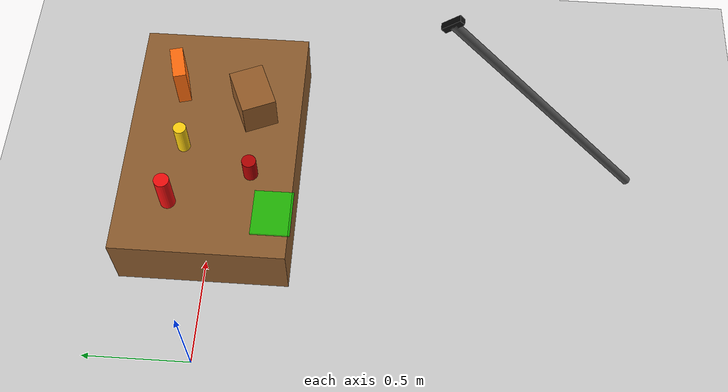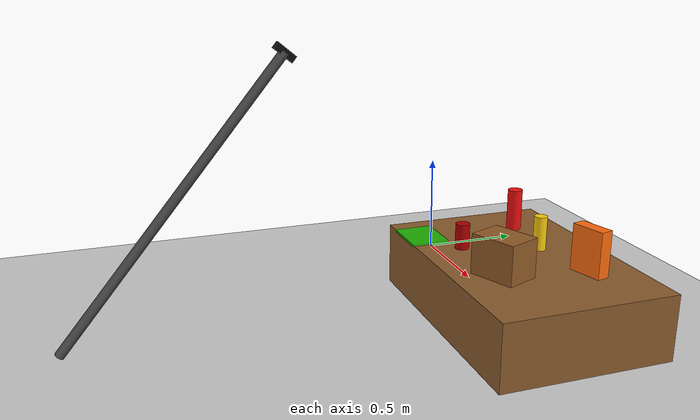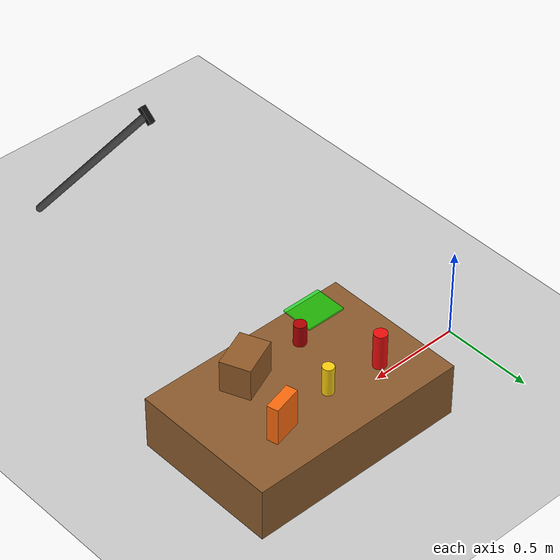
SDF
<?xml version="1.0" ?>

<sdf version="1.7">
  <world name="pbvs_pick_place">

    <plugin filename="gz-sim-physics-system" name="gz::sim::systems::Physics"/>
    <plugin filename="gz-sim-user-commands-system" name="gz::sim::systems::UserCommands"/>
    <plugin filename="gz-sim-scene-broadcaster-system" name="gz::sim::systems::SceneBroadcaster"/>
    <plugin filename="gz-sim-sensors-system" name="gz::sim::systems::Sensors">
      <render_engine>ogre2</render_engine>
    </plugin>

    <gravity>0 0 -9.8</gravity>

    <include>
      <uri>https://fuel.gazebosim.org/1.0/OpenRobotics/models/Sun</uri>
    </include>

    <include>
      <uri>https://fuel.gazebosim.org/1.0/OpenRobotics/models/Ground Plane</uri>
    </include>

    <model name="pbvs_table">
      <static>true</static>
      <pose>1.00 0.00 0.15 0 0 0</pose>

      <link name="table_link">
        <collision name="table_collision">
          <geometry>
            <box>
              <size>1.20 0.80 0.30</size>
            </box>
          </geometry>
        </collision>

        <visual name="table_visual">
          <geometry>
            <box>
              <size>1.20 0.80 0.30</size>
            </box>
          </geometry>
          <material>
            <ambient>0.55 0.36 0.18 1</ambient>
            <diffuse>0.55 0.36 0.18 1</diffuse>
          </material>
        </visual>
      </link>
    </model>

    <!--
      Objects are separated on the table.

      New table top z = 0.30 m.
      object centre z = 0.30 + object_height/2
    -->

    <model name="red_cylinder">
      <static>true</static>
      <!-- height = 0.20, centre z = 0.30 + 0.20/2 = 0.40 -->
      <pose>0.65 0.16 0.40 0 0 0</pose>

      <link name="red_cylinder_link">
        <collision name="collision">
          <geometry>
            <cylinder>
              <radius>0.035</radius>
              <length>0.20</length>
            </cylinder>
          </geometry>
        </collision>

        <visual name="visual">
          <geometry>
            <cylinder>
              <radius>0.035</radius>
              <length>0.20</length>
            </cylinder>
          </geometry>
          <material>
            <ambient>0.95 0.05 0.05 1</ambient>
            <diffuse>0.95 0.05 0.05 1</diffuse>
          </material>
        </visual>
      </link>
    </model>

    <model name="mustard">
      <static>true</static>
      <!-- height = 0.16, centre z = 0.30 + 0.16/2 = 0.38 -->
      <pose>0.95 0.13 0.38 0 0 0</pose>

      <link name="mustard_link">
        <collision name="collision">
          <geometry>
            <cylinder>
              <radius>0.030</radius>
              <length>0.16</length>
            </cylinder>
          </geometry>
        </collision>

        <visual name="visual">
          <geometry>
            <cylinder>
              <radius>0.030</radius>
              <length>0.16</length>
            </cylinder>
          </geometry>
          <material>
            <ambient>1.00 0.82 0.05 1</ambient>
            <diffuse>1.00 0.82 0.05 1</diffuse>
          </material>
        </visual>
      </link>
    </model>

    <model name="cheezit">
      <static>true</static>
      <!-- height = 0.21, centre z = 0.30 + 0.21/2 = 0.405 -->
      <pose>1.28 0.18 0.405 0 0 0.25</pose>

      <link name="cheezit_link">
        <collision name="collision">
          <geometry>
            <box>
              <size>0.16 0.06 0.21</size>
            </box>
          </geometry>
        </collision>

        <visual name="visual">
          <geometry>
            <box>
              <size>0.16 0.06 0.21</size>
            </box>
          </geometry>
          <material>
            <ambient>1.00 0.42 0.05 1</ambient>
            <diffuse>1.00 0.42 0.05 1</diffuse>
          </material>
        </visual>
      </link>
    </model>

    <model name="cardboard_box">
      <static>true</static>
      <!-- height = 0.18, centre z = 0.30 + 0.18/2 = 0.39 -->
      <pose>1.18 -0.18 0.39 0 0 0.40</pose>

      <link name="cardboard_box_link">
        <collision name="collision">
          <geometry>
            <box>
              <size>0.22 0.16 0.18</size>
            </box>
          </geometry>
        </collision>

        <visual name="visual">
          <geometry>
            <box>
              <size>0.22 0.16 0.18</size>
            </box>
          </geometry>
          <material>
            <ambient>0.58 0.36 0.16 1</ambient>
            <diffuse>0.58 0.36 0.16 1</diffuse>
          </material>
        </visual>
      </link>
    </model>

    <model name="coke_can">
      <static>true</static>
      <!-- height = 0.12, centre z = 0.30 + 0.12/2 = 0.36 -->
      <pose>0.82 -0.20 0.36 0 0 0</pose>

      <link name="coke_can_link">
        <collision name="collision">
          <geometry>
            <cylinder>
              <radius>0.033</radius>
              <length>0.12</length>
            </cylinder>
          </geometry>
        </collision>

        <visual name="visual">
          <geometry>
            <cylinder>
              <radius>0.033</radius>
              <length>0.12</length>
            </cylinder>
          </geometry>
          <material>
            <ambient>0.70 0.00 0.00 1</ambient>
            <diffuse>0.70 0.00 0.00 1</diffuse>
          </material>
        </visual>
      </link>
    </model>

    <model name="drop_zone">
      <static>true</static>
      <!-- thickness = 0.012, centre z = 0.30 + 0.012/2 = 0.306 -->
      <pose>0.62 -0.32 0.306 0 0 0</pose>

      <link name="drop_link">
        <visual name="drop_visual">
          <geometry>
            <box>
              <size>0.22 0.18 0.012</size>
            </box>
          </geometry>
          <material>
            <ambient>0.0 0.9 0.0 0.7</ambient>
            <diffuse>0.0 0.9 0.0 0.7</diffuse>
          </material>
        </visual>
      </link>
    </model>

    <model name="realsense_stand">
      <static>true</static>
      <pose>1.00 -1.05 1.25 0 0.692 1.571</pose>

      <link name="camera_stand_link">
        <visual name="pole_visual">
          <pose>0 0 -0.72 0 0 0</pose>
          <geometry>
            <cylinder>
              <radius>0.02</radius>
              <length>1.44</length>
            </cylinder>
          </geometry>
          <material>
            <ambient>0.30 0.30 0.30 1</ambient>
            <diffuse>0.30 0.30 0.30 1</diffuse>
          </material>
        </visual>

        <visual name="camera_body_visual">
          <geometry>
            <box>
              <size>0.09 0.03 0.03</size>
            </box>
          </geometry>
          <material>
            <ambient>0.05 0.05 0.05 1</ambient>
            <diffuse>0.05 0.05 0.05 1</diffuse>
          </material>
        </visual>

        <sensor name="realsense_color" type="camera">
          <pose>0 0 0 0 0 0</pose>
          <update_rate>30</update_rate>

          <camera>
            <horizontal_fov>1.20</horizontal_fov>
            <image>
              <width>640</width>
              <height>480</height>
              <format>R8G8B8</format>
            </image>
            <clip>
              <near>0.10</near>
              <far>10.0</far>
            </clip>
          </camera>

          <topic>/camera/camera/color/image_raw</topic>
          <camera_info_topic>/camera/camera/color/camera_info</camera_info_topic>
        </sensor>

        <sensor name="realsense_depth" type="depth_camera">
          <pose>0 0 0 0 0 0</pose>
          <update_rate>30</update_rate>

          <camera>
            <horizontal_fov>1.20</horizontal_fov>
            <image>
              <width>640</width>
              <height>480</height>
            </image>
            <clip>
              <near>0.10</near>
              <far>5.0</far>
            </clip>
          </camera>

          <topic>/camera/camera/aligned_depth_to_color/image_raw</topic>
        </sensor>
      </link>
    </model>

    <scene>
      <shadows>false</shadows>
      <ambient>0.55 0.55 0.55 1</ambient>
      <background>0.72 0.72 0.72 1</background>
    </scene>

  </world>
</sdf>
